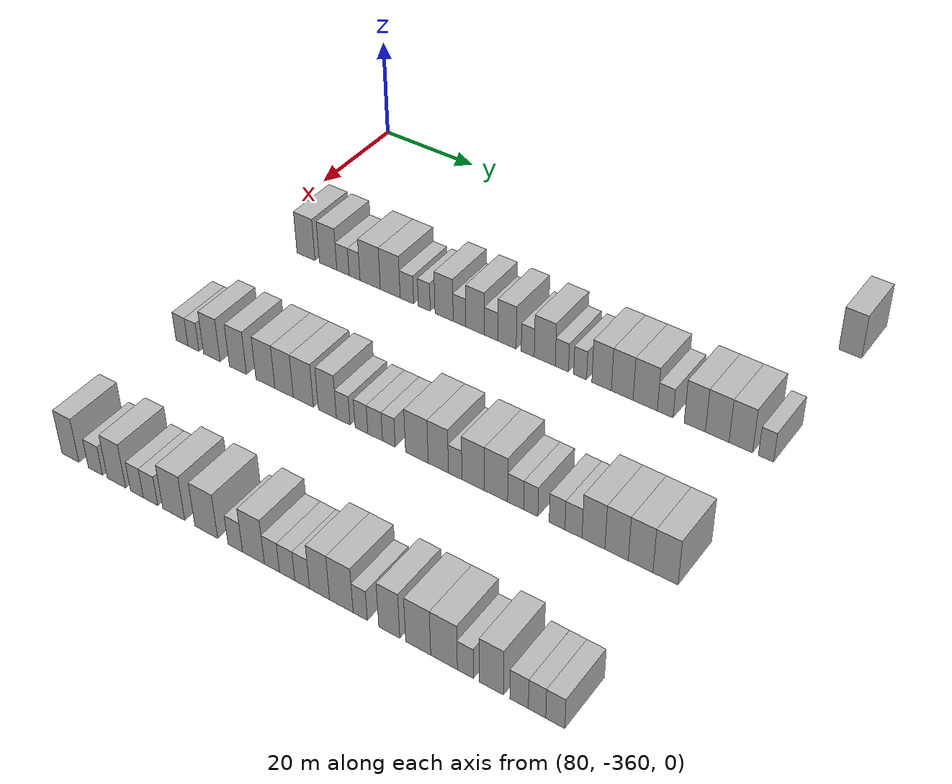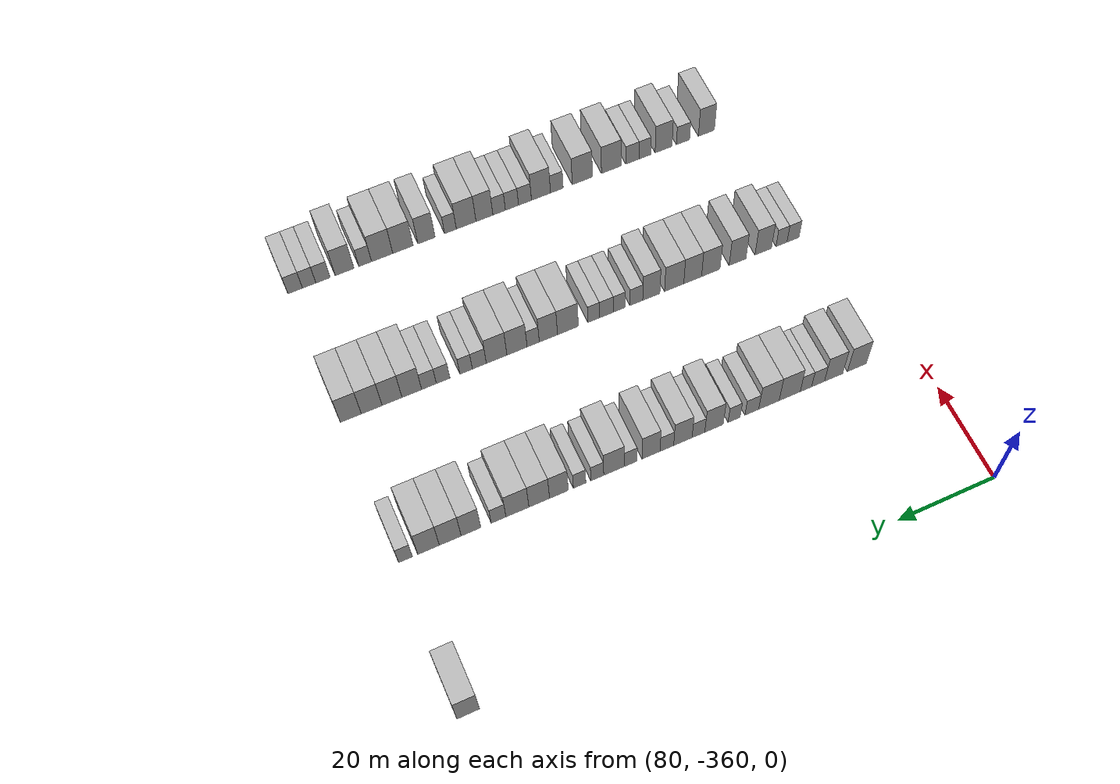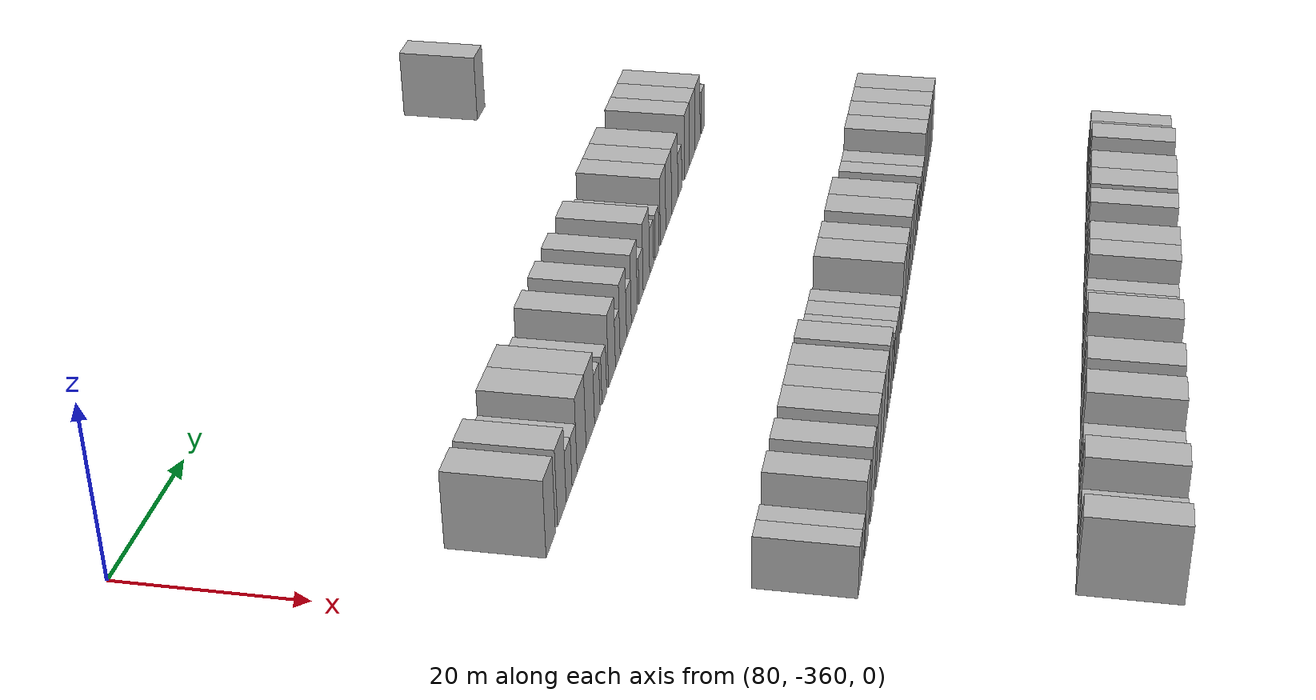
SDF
<sdf version="1.6">
 <world name="default">
  <model name="building_496">
   <static>1</static>
   <pose>85.0000 -257.0324 0 0.000000 0.000000 0.000000</pose>
   <link name="link">
    <pose>0 0 4.50 0 0 0</pose>
    <collision name="collision"><geometry><box><size>10.0000 4.1107 9.0000</size></box></geometry></collision>
    <visual name="visual">
     <cast_shadows>0</cast_shadows>
     <geometry><box><size>10.0000 4.1107 9.0000</size></box></geometry>
     <material>
      <script>
       <uri>model://HANNAS_wall/materials/scripts</uri>
       <uri>model://HANNAS_wall/materials/textures</uri>
       <name>vrc/HANNAS_wall</name>
      </script>
     </material>
    </visual>
   </link>
  </model>
  <model name="building_699">
   <static>1</static>
   <pose>115.0000 -348.1532 0 0.000000 0.000000 0.000000</pose>
   <link name="link">
    <pose>0 0 4.50 0 0 0</pose>
    <collision name="collision"><geometry><box><size>10.0000 4.0705 9.0000</size></box></geometry></collision>
    <visual name="visual">
     <cast_shadows>0</cast_shadows>
     <geometry><box><size>10.0000 4.0705 9.0000</size></box></geometry>
     <material>
      <script>
       <uri>model://HANNAS_wall/materials/scripts</uri>
       <uri>model://HANNAS_wall/materials/textures</uri>
       <name>vrc/HANNAS_wall</name>
      </script>
     </material>
    </visual>
   </link>
  </model>
  <model name="building_700">
   <static>1</static>
   <pose>115.0000 -343.1688 0 0.000000 0.000000 0.000000</pose>
   <link name="link">
    <pose>0 0 4.50 0 0 0</pose>
    <collision name="collision"><geometry><box><size>10.0000 3.8982 9.0000</size></box></geometry></collision>
    <visual name="visual">
     <cast_shadows>0</cast_shadows>
     <geometry><box><size>10.0000 3.8982 9.0000</size></box></geometry>
     <material>
      <script>
       <uri>model://HANNAS_wall/materials/scripts</uri>
       <uri>model://HANNAS_wall/materials/textures</uri>
       <name>vrc/HANNAS_wall</name>
      </script>
     </material>
    </visual>
   </link>
  </model>
  <model name="building_701">
   <static>1</static>
   <pose>115.0000 -339.8557 0 0.000000 0.000000 0.000000</pose>
   <link name="link">
    <pose>0 0 3.00 0 0 0</pose>
    <collision name="collision"><geometry><box><size>10.0000 2.7280 6.0000</size></box></geometry></collision>
    <visual name="visual">
     <cast_shadows>0</cast_shadows>
     <geometry><box><size>10.0000 2.7280 6.0000</size></box></geometry>
     <material>
      <script>
       <uri>model://HANNAS_wall/materials/scripts</uri>
       <uri>model://HANNAS_wall/materials/textures</uri>
       <name>vrc/HANNAS_wall</name>
      </script>
     </material>
    </visual>
   </link>
  </model>
  <model name="building_702">
   <static>1</static>
   <pose>115.0000 -337.2853 0 0.000000 0.000000 0.000000</pose>
   <link name="link">
    <pose>0 0 3.00 0 0 0</pose>
    <collision name="collision"><geometry><box><size>10.0000 2.4129 6.0000</size></box></geometry></collision>
    <visual name="visual">
     <cast_shadows>0</cast_shadows>
     <geometry><box><size>10.0000 2.4129 6.0000</size></box></geometry>
     <material>
      <script>
       <uri>model://HANNAS_wall/materials/scripts</uri>
       <uri>model://HANNAS_wall/materials/textures</uri>
       <name>vrc/HANNAS_wall</name>
      </script>
     </material>
    </visual>
   </link>
  </model>
  <model name="building_703">
   <static>1</static>
   <pose>115.0000 -333.8695 0 0.000000 0.000000 0.000000</pose>
   <link name="link">
    <pose>0 0 4.50 0 0 0</pose>
    <collision name="collision"><geometry><box><size>10.0000 4.4187 9.0000</size></box></geometry></collision>
    <visual name="visual">
     <cast_shadows>0</cast_shadows>
     <geometry><box><size>10.0000 4.4187 9.0000</size></box></geometry>
     <material>
      <script>
       <uri>model://HANNAS_wall/materials/scripts</uri>
       <uri>model://HANNAS_wall/materials/textures</uri>
       <name>vrc/HANNAS_wall</name>
      </script>
     </material>
    </visual>
   </link>
  </model>
  <model name="building_704">
   <static>1</static>
   <pose>115.0000 -329.5209 0 0.000000 0.000000 0.000000</pose>
   <link name="link">
    <pose>0 0 4.50 0 0 0</pose>
    <collision name="collision"><geometry><box><size>10.0000 4.2785 9.0000</size></box></geometry></collision>
    <visual name="visual">
     <cast_shadows>0</cast_shadows>
     <geometry><box><size>10.0000 4.2785 9.0000</size></box></geometry>
     <material>
      <script>
       <uri>model://HANNAS_wall/materials/scripts</uri>
       <uri>model://HANNAS_wall/materials/textures</uri>
       <name>vrc/HANNAS_wall</name>
      </script>
     </material>
    </visual>
   </link>
  </model>
  <model name="building_705">
   <static>1</static>
   <pose>115.0000 -325.9528 0 0.000000 0.000000 0.000000</pose>
   <link name="link">
    <pose>0 0 3.00 0 0 0</pose>
    <collision name="collision"><geometry><box><size>10.0000 2.8577 6.0000</size></box></geometry></collision>
    <visual name="visual">
     <cast_shadows>0</cast_shadows>
     <geometry><box><size>10.0000 2.8577 6.0000</size></box></geometry>
     <material>
      <script>
       <uri>model://HANNAS_wall/materials/scripts</uri>
       <uri>model://HANNAS_wall/materials/textures</uri>
       <name>vrc/HANNAS_wall</name>
      </script>
     </material>
    </visual>
   </link>
  </model>
  <model name="building_706">
   <static>1</static>
   <pose>115.0000 -322.2685 0 0.000000 0.000000 0.000000</pose>
   <link name="link">
    <pose>0 0 3.00 0 0 0</pose>
    <collision name="collision"><geometry><box><size>10.0000 2.5109 6.0000</size></box></geometry></collision>
    <visual name="visual">
     <cast_shadows>0</cast_shadows>
     <geometry><box><size>10.0000 2.5109 6.0000</size></box></geometry>
     <material>
      <script>
       <uri>model://HANNAS_wall/materials/scripts</uri>
       <uri>model://HANNAS_wall/materials/textures</uri>
       <name>vrc/HANNAS_wall</name>
      </script>
     </material>
    </visual>
   </link>
  </model>
  <model name="building_707">
   <static>1</static>
   <pose>115.0000 -318.1176 0 0.000000 0.000000 0.000000</pose>
   <link name="link">
    <pose>0 0 4.50 0 0 0</pose>
    <collision name="collision"><geometry><box><size>10.0000 3.7908 9.0000</size></box></geometry></collision>
    <visual name="visual">
     <cast_shadows>0</cast_shadows>
     <geometry><box><size>10.0000 3.7908 9.0000</size></box></geometry>
     <material>
      <script>
       <uri>model://HANNAS_wall/materials/scripts</uri>
       <uri>model://HANNAS_wall/materials/textures</uri>
       <name>vrc/HANNAS_wall</name>
      </script>
     </material>
    </visual>
   </link>
  </model>
  <model name="building_708">
   <static>1</static>
   <pose>115.0000 -314.9171 0 0.000000 0.000000 0.000000</pose>
   <link name="link">
    <pose>0 0 3.00 0 0 0</pose>
    <collision name="collision"><geometry><box><size>10.0000 2.6103 6.0000</size></box></geometry></collision>
    <visual name="visual">
     <cast_shadows>0</cast_shadows>
     <geometry><box><size>10.0000 2.6103 6.0000</size></box></geometry>
     <material>
      <script>
       <uri>model://HANNAS_wall/materials/scripts</uri>
       <uri>model://HANNAS_wall/materials/textures</uri>
       <name>vrc/HANNAS_wall</name>
      </script>
     </material>
    </visual>
   </link>
  </model>
  <model name="building_709">
   <static>1</static>
   <pose>115.0000 -311.7356 0 0.000000 0.000000 0.000000</pose>
   <link name="link">
    <pose>0 0 4.50 0 0 0</pose>
    <collision name="collision"><geometry><box><size>10.0000 3.7527 9.0000</size></box></geometry></collision>
    <visual name="visual">
     <cast_shadows>0</cast_shadows>
     <geometry><box><size>10.0000 3.7527 9.0000</size></box></geometry>
     <material>
      <script>
       <uri>model://HANNAS_wall/materials/scripts</uri>
       <uri>model://HANNAS_wall/materials/textures</uri>
       <name>vrc/HANNAS_wall</name>
      </script>
     </material>
    </visual>
   </link>
  </model>
  <model name="building_710">
   <static>1</static>
   <pose>115.0000 -308.4709 0 0.000000 0.000000 0.000000</pose>
   <link name="link">
    <pose>0 0 3.00 0 0 0</pose>
    <collision name="collision"><geometry><box><size>10.0000 2.7768 6.0000</size></box></geometry></collision>
    <visual name="visual">
     <cast_shadows>0</cast_shadows>
     <geometry><box><size>10.0000 2.7768 6.0000</size></box></geometry>
     <material>
      <script>
       <uri>model://HANNAS_wall/materials/scripts</uri>
       <uri>model://HANNAS_wall/materials/textures</uri>
       <name>vrc/HANNAS_wall</name>
      </script>
     </material>
    </visual>
   </link>
  </model>
  <model name="building_711">
   <static>1</static>
   <pose>115.0000 -305.2650 0 0.000000 0.000000 0.000000</pose>
   <link name="link">
    <pose>0 0 4.50 0 0 0</pose>
    <collision name="collision"><geometry><box><size>10.0000 3.6349 9.0000</size></box></geometry></collision>
    <visual name="visual">
     <cast_shadows>0</cast_shadows>
     <geometry><box><size>10.0000 3.6349 9.0000</size></box></geometry>
     <material>
      <script>
       <uri>model://HANNAS_wall/materials/scripts</uri>
       <uri>model://HANNAS_wall/materials/textures</uri>
       <name>vrc/HANNAS_wall</name>
      </script>
     </material>
    </visual>
   </link>
  </model>
  <model name="building_712">
   <static>1</static>
   <pose>115.0000 -301.1611 0 0.000000 0.000000 0.000000</pose>
   <link name="link">
    <pose>0 0 3.00 0 0 0</pose>
    <collision name="collision"><geometry><box><size>10.0000 2.5730 6.0000</size></box></geometry></collision>
    <visual name="visual">
     <cast_shadows>0</cast_shadows>
     <geometry><box><size>10.0000 2.5730 6.0000</size></box></geometry>
     <material>
      <script>
       <uri>model://HANNAS_wall/materials/scripts</uri>
       <uri>model://HANNAS_wall/materials/textures</uri>
       <name>vrc/HANNAS_wall</name>
      </script>
     </material>
    </visual>
   </link>
  </model>
  <model name="building_713">
   <static>1</static>
   <pose>115.0000 -297.8259 0 0.000000 0.000000 0.000000</pose>
   <link name="link">
    <pose>0 0 4.50 0 0 0</pose>
    <collision name="collision"><geometry><box><size>10.0000 4.0975 9.0000</size></box></geometry></collision>
    <visual name="visual">
     <cast_shadows>0</cast_shadows>
     <geometry><box><size>10.0000 4.0975 9.0000</size></box></geometry>
     <material>
      <script>
       <uri>model://HANNAS_wall/materials/scripts</uri>
       <uri>model://HANNAS_wall/materials/textures</uri>
       <name>vrc/HANNAS_wall</name>
      </script>
     </material>
    </visual>
   </link>
  </model>
  <model name="building_714">
   <static>1</static>
   <pose>115.0000 -294.4943 0 0.000000 0.000000 0.000000</pose>
   <link name="link">
    <pose>0 0 3.00 0 0 0</pose>
    <collision name="collision"><geometry><box><size>10.0000 2.5657 6.0000</size></box></geometry></collision>
    <visual name="visual">
     <cast_shadows>0</cast_shadows>
     <geometry><box><size>10.0000 2.5657 6.0000</size></box></geometry>
     <material>
      <script>
       <uri>model://HANNAS_wall/materials/scripts</uri>
       <uri>model://HANNAS_wall/materials/textures</uri>
       <name>vrc/HANNAS_wall</name>
      </script>
     </material>
    </visual>
   </link>
  </model>
  <model name="building_715">
   <static>1</static>
   <pose>115.0000 -290.9770 0 0.000000 0.000000 0.000000</pose>
   <link name="link">
    <pose>0 0 3.00 0 0 0</pose>
    <collision name="collision"><geometry><box><size>10.0000 2.4687 6.0000</size></box></geometry></collision>
    <visual name="visual">
     <cast_shadows>0</cast_shadows>
     <geometry><box><size>10.0000 2.4687 6.0000</size></box></geometry>
     <material>
      <script>
       <uri>model://HANNAS_wall/materials/scripts</uri>
       <uri>model://HANNAS_wall/materials/textures</uri>
       <name>vrc/HANNAS_wall</name>
      </script>
     </material>
    </visual>
   </link>
  </model>
  <model name="building_716">
   <static>1</static>
   <pose>115.0000 -286.8966 0 0.000000 0.000000 0.000000</pose>
   <link name="link">
    <pose>0 0 4.50 0 0 0</pose>
    <collision name="collision"><geometry><box><size>10.0000 3.6921 9.0000</size></box></geometry></collision>
    <visual name="visual">
     <cast_shadows>0</cast_shadows>
     <geometry><box><size>10.0000 3.6921 9.0000</size></box></geometry>
     <material>
      <script>
       <uri>model://HANNAS_wall/materials/scripts</uri>
       <uri>model://HANNAS_wall/materials/textures</uri>
       <name>vrc/HANNAS_wall</name>
      </script>
     </material>
    </visual>
   </link>
  </model>
  <model name="building_717">
   <static>1</static>
   <pose>115.0000 -283.0255 0 0.000000 0.000000 0.000000</pose>
   <link name="link">
    <pose>0 0 4.50 0 0 0</pose>
    <collision name="collision"><geometry><box><size>10.0000 4.0502 9.0000</size></box></geometry></collision>
    <visual name="visual">
     <cast_shadows>0</cast_shadows>
     <geometry><box><size>10.0000 4.0502 9.0000</size></box></geometry>
     <material>
      <script>
       <uri>model://HANNAS_wall/materials/scripts</uri>
       <uri>model://HANNAS_wall/materials/textures</uri>
       <name>vrc/HANNAS_wall</name>
      </script>
     </material>
    </visual>
   </link>
  </model>
  <model name="building_718">
   <static>1</static>
   <pose>115.0000 -278.7639 0 0.000000 0.000000 0.000000</pose>
   <link name="link">
    <pose>0 0 4.50 0 0 0</pose>
    <collision name="collision"><geometry><box><size>10.0000 4.4729 9.0000</size></box></geometry></collision>
    <visual name="visual">
     <cast_shadows>0</cast_shadows>
     <geometry><box><size>10.0000 4.4729 9.0000</size></box></geometry>
     <material>
      <script>
       <uri>model://HANNAS_wall/materials/scripts</uri>
       <uri>model://HANNAS_wall/materials/textures</uri>
       <name>vrc/HANNAS_wall</name>
      </script>
     </material>
    </visual>
   </link>
  </model>
  <model name="building_719">
   <static>1</static>
   <pose>115.0000 -275.0985 0 0.000000 0.000000 0.000000</pose>
   <link name="link">
    <pose>0 0 3.00 0 0 0</pose>
    <collision name="collision"><geometry><box><size>10.0000 2.8578 6.0000</size></box></geometry></collision>
    <visual name="visual">
     <cast_shadows>0</cast_shadows>
     <geometry><box><size>10.0000 2.8578 6.0000</size></box></geometry>
     <material>
      <script>
       <uri>model://HANNAS_wall/materials/scripts</uri>
       <uri>model://HANNAS_wall/materials/textures</uri>
       <name>vrc/HANNAS_wall</name>
      </script>
     </material>
    </visual>
   </link>
  </model>
  <model name="building_720">
   <static>1</static>
   <pose>115.0000 -269.7744 0 0.000000 0.000000 0.000000</pose>
   <link name="link">
    <pose>0 0 4.50 0 0 0</pose>
    <collision name="collision"><geometry><box><size>10.0000 3.7905 9.0000</size></box></geometry></collision>
    <visual name="visual">
     <cast_shadows>0</cast_shadows>
     <geometry><box><size>10.0000 3.7905 9.0000</size></box></geometry>
     <material>
      <script>
       <uri>model://HANNAS_wall/materials/scripts</uri>
       <uri>model://HANNAS_wall/materials/textures</uri>
       <name>vrc/HANNAS_wall</name>
      </script>
     </material>
    </visual>
   </link>
  </model>
  <model name="building_721">
   <static>1</static>
   <pose>115.0000 -265.7896 0 0.000000 0.000000 0.000000</pose>
   <link name="link">
    <pose>0 0 4.50 0 0 0</pose>
    <collision name="collision"><geometry><box><size>10.0000 4.1790 9.0000</size></box></geometry></collision>
    <visual name="visual">
     <cast_shadows>0</cast_shadows>
     <geometry><box><size>10.0000 4.1790 9.0000</size></box></geometry>
     <material>
      <script>
       <uri>model://HANNAS_wall/materials/scripts</uri>
       <uri>model://HANNAS_wall/materials/textures</uri>
       <name>vrc/HANNAS_wall</name>
      </script>
     </material>
    </visual>
   </link>
  </model>
  <model name="building_722">
   <static>1</static>
   <pose>115.0000 -261.6456 0 0.000000 0.000000 0.000000</pose>
   <link name="link">
    <pose>0 0 4.50 0 0 0</pose>
    <collision name="collision"><geometry><box><size>10.0000 4.1090 9.0000</size></box></geometry></collision>
    <visual name="visual">
     <cast_shadows>0</cast_shadows>
     <geometry><box><size>10.0000 4.1090 9.0000</size></box></geometry>
     <material>
      <script>
       <uri>model://HANNAS_wall/materials/scripts</uri>
       <uri>model://HANNAS_wall/materials/textures</uri>
       <name>vrc/HANNAS_wall</name>
      </script>
     </material>
    </visual>
   </link>
  </model>
  <model name="building_723">
   <static>1</static>
   <pose>115.0000 -257.2835 0 0.000000 0.000000 0.000000</pose>
   <link name="link">
    <pose>0 0 3.00 0 0 0</pose>
    <collision name="collision"><geometry><box><size>10.0000 2.6151 6.0000</size></box></geometry></collision>
    <visual name="visual">
     <cast_shadows>0</cast_shadows>
     <geometry><box><size>10.0000 2.6151 6.0000</size></box></geometry>
     <material>
      <script>
       <uri>model://HANNAS_wall/materials/scripts</uri>
       <uri>model://HANNAS_wall/materials/textures</uri>
       <name>vrc/HANNAS_wall</name>
      </script>
     </material>
    </visual>
   </link>
  </model>
  <model name="building_929">
   <static>1</static>
   <pose>145.0000 -350.3426 0 0.000000 0.000000 0.000000</pose>
   <link name="link">
    <pose>0 0 3.00 0 0 0</pose>
    <collision name="collision"><geometry><box><size>10.0000 2.6551 6.0000</size></box></geometry></collision>
    <visual name="visual">
     <cast_shadows>0</cast_shadows>
     <geometry><box><size>10.0000 2.6551 6.0000</size></box></geometry>
     <material>
      <script>
       <uri>model://HANNAS_wall/materials/scripts</uri>
       <uri>model://HANNAS_wall/materials/textures</uri>
       <name>vrc/HANNAS_wall</name>
      </script>
     </material>
    </visual>
   </link>
  </model>
  <model name="building_930">
   <static>1</static>
   <pose>145.0000 -347.7950 0 0.000000 0.000000 0.000000</pose>
   <link name="link">
    <pose>0 0 3.00 0 0 0</pose>
    <collision name="collision"><geometry><box><size>10.0000 2.4402 6.0000</size></box></geometry></collision>
    <visual name="visual">
     <cast_shadows>0</cast_shadows>
     <geometry><box><size>10.0000 2.4402 6.0000</size></box></geometry>
     <material>
      <script>
       <uri>model://HANNAS_wall/materials/scripts</uri>
       <uri>model://HANNAS_wall/materials/textures</uri>
       <name>vrc/HANNAS_wall</name>
      </script>
     </material>
    </visual>
   </link>
  </model>
  <model name="building_931">
   <static>1</static>
   <pose>145.0000 -343.7658 0 0.000000 0.000000 0.000000</pose>
   <link name="link">
    <pose>0 0 4.50 0 0 0</pose>
    <collision name="collision"><geometry><box><size>10.0000 3.6182 9.0000</size></box></geometry></collision>
    <visual name="visual">
     <cast_shadows>0</cast_shadows>
     <geometry><box><size>10.0000 3.6182 9.0000</size></box></geometry>
     <material>
      <script>
       <uri>model://HANNAS_wall/materials/scripts</uri>
       <uri>model://HANNAS_wall/materials/textures</uri>
       <name>vrc/HANNAS_wall</name>
      </script>
     </material>
    </visual>
   </link>
  </model>
  <model name="building_932">
   <static>1</static>
   <pose>145.0000 -338.1232 0 0.000000 0.000000 0.000000</pose>
   <link name="link">
    <pose>0 0 4.50 0 0 0</pose>
    <collision name="collision"><geometry><box><size>10.0000 3.6670 9.0000</size></box></geometry></collision>
    <visual name="visual">
     <cast_shadows>0</cast_shadows>
     <geometry><box><size>10.0000 3.6670 9.0000</size></box></geometry>
     <material>
      <script>
       <uri>model://HANNAS_wall/materials/scripts</uri>
       <uri>model://HANNAS_wall/materials/textures</uri>
       <name>vrc/HANNAS_wall</name>
      </script>
     </material>
    </visual>
   </link>
  </model>
  <model name="building_933">
   <static>1</static>
   <pose>145.0000 -332.2966 0 0.000000 0.000000 0.000000</pose>
   <link name="link">
    <pose>0 0 4.50 0 0 0</pose>
    <collision name="collision"><geometry><box><size>10.0000 3.9861 9.0000</size></box></geometry></collision>
    <visual name="visual">
     <cast_shadows>0</cast_shadows>
     <geometry><box><size>10.0000 3.9861 9.0000</size></box></geometry>
     <material>
      <script>
       <uri>model://HANNAS_wall/materials/scripts</uri>
       <uri>model://HANNAS_wall/materials/textures</uri>
       <name>vrc/HANNAS_wall</name>
      </script>
     </material>
    </visual>
   </link>
  </model>
  <model name="building_934">
   <static>1</static>
   <pose>145.0000 -328.3857 0 0.000000 0.000000 0.000000</pose>
   <link name="link">
    <pose>0 0 4.50 0 0 0</pose>
    <collision name="collision"><geometry><box><size>10.0000 3.8357 9.0000</size></box></geometry></collision>
    <visual name="visual">
     <cast_shadows>0</cast_shadows>
     <geometry><box><size>10.0000 3.8357 9.0000</size></box></geometry>
     <material>
      <script>
       <uri>model://HANNAS_wall/materials/scripts</uri>
       <uri>model://HANNAS_wall/materials/textures</uri>
       <name>vrc/HANNAS_wall</name>
      </script>
     </material>
    </visual>
   </link>
  </model>
  <model name="building_935">
   <static>1</static>
   <pose>145.0000 -324.4025 0 0.000000 0.000000 0.000000</pose>
   <link name="link">
    <pose>0 0 4.50 0 0 0</pose>
    <collision name="collision"><geometry><box><size>10.0000 4.1306 9.0000</size></box></geometry></collision>
    <visual name="visual">
     <cast_shadows>0</cast_shadows>
     <geometry><box><size>10.0000 4.1306 9.0000</size></box></geometry>
     <material>
      <script>
       <uri>model://HANNAS_wall/materials/scripts</uri>
       <uri>model://HANNAS_wall/materials/textures</uri>
       <name>vrc/HANNAS_wall</name>
      </script>
     </material>
    </visual>
   </link>
  </model>
  <model name="building_936">
   <static>1</static>
   <pose>145.0000 -319.5106 0 0.000000 0.000000 0.000000</pose>
   <link name="link">
    <pose>0 0 4.50 0 0 0</pose>
    <collision name="collision"><geometry><box><size>10.0000 3.6531 9.0000</size></box></geometry></collision>
    <visual name="visual">
     <cast_shadows>0</cast_shadows>
     <geometry><box><size>10.0000 3.6531 9.0000</size></box></geometry>
     <material>
      <script>
       <uri>model://HANNAS_wall/materials/scripts</uri>
       <uri>model://HANNAS_wall/materials/textures</uri>
       <name>vrc/HANNAS_wall</name>
      </script>
     </material>
    </visual>
   </link>
  </model>
  <model name="building_937">
   <static>1</static>
   <pose>145.0000 -316.3221 0 0.000000 0.000000 0.000000</pose>
   <link name="link">
    <pose>0 0 3.00 0 0 0</pose>
    <collision name="collision"><geometry><box><size>10.0000 2.7239 6.0000</size></box></geometry></collision>
    <visual name="visual">
     <cast_shadows>0</cast_shadows>
     <geometry><box><size>10.0000 2.7239 6.0000</size></box></geometry>
     <material>
      <script>
       <uri>model://HANNAS_wall/materials/scripts</uri>
       <uri>model://HANNAS_wall/materials/textures</uri>
       <name>vrc/HANNAS_wall</name>
      </script>
     </material>
    </visual>
   </link>
  </model>
  <model name="building_938">
   <static>1</static>
   <pose>145.0000 -312.7065 0 0.000000 0.000000 0.000000</pose>
   <link name="link">
    <pose>0 0 3.00 0 0 0</pose>
    <collision name="collision"><geometry><box><size>10.0000 2.5075 6.0000</size></box></geometry></collision>
    <visual name="visual">
     <cast_shadows>0</cast_shadows>
     <geometry><box><size>10.0000 2.5075 6.0000</size></box></geometry>
     <material>
      <script>
       <uri>model://HANNAS_wall/materials/scripts</uri>
       <uri>model://HANNAS_wall/materials/textures</uri>
       <name>vrc/HANNAS_wall</name>
      </script>
     </material>
    </visual>
   </link>
  </model>
  <model name="building_939">
   <static>1</static>
   <pose>145.0000 -310.0122 0 0.000000 0.000000 0.000000</pose>
   <link name="link">
    <pose>0 0 3.00 0 0 0</pose>
    <collision name="collision"><geometry><box><size>10.0000 2.8811 6.0000</size></box></geometry></collision>
    <visual name="visual">
     <cast_shadows>0</cast_shadows>
     <geometry><box><size>10.0000 2.8811 6.0000</size></box></geometry>
     <material>
      <script>
       <uri>model://HANNAS_wall/materials/scripts</uri>
       <uri>model://HANNAS_wall/materials/textures</uri>
       <name>vrc/HANNAS_wall</name>
      </script>
     </material>
    </visual>
   </link>
  </model>
  <model name="building_940">
   <static>1</static>
   <pose>145.0000 -307.3392 0 0.000000 0.000000 0.000000</pose>
   <link name="link">
    <pose>0 0 3.00 0 0 0</pose>
    <collision name="collision"><geometry><box><size>10.0000 2.4649 6.0000</size></box></geometry></collision>
    <visual name="visual">
     <cast_shadows>0</cast_shadows>
     <geometry><box><size>10.0000 2.4649 6.0000</size></box></geometry>
     <material>
      <script>
       <uri>model://HANNAS_wall/materials/scripts</uri>
       <uri>model://HANNAS_wall/materials/textures</uri>
       <name>vrc/HANNAS_wall</name>
      </script>
     </material>
    </visual>
   </link>
  </model>
  <model name="building_941">
   <static>1</static>
   <pose>145.0000 -301.9394 0 0.000000 0.000000 0.000000</pose>
   <link name="link">
    <pose>0 0 4.50 0 0 0</pose>
    <collision name="collision"><geometry><box><size>10.0000 4.3347 9.0000</size></box></geometry></collision>
    <visual name="visual">
     <cast_shadows>0</cast_shadows>
     <geometry><box><size>10.0000 4.3347 9.0000</size></box></geometry>
     <material>
      <script>
       <uri>model://HANNAS_wall/materials/scripts</uri>
       <uri>model://HANNAS_wall/materials/textures</uri>
       <name>vrc/HANNAS_wall</name>
      </script>
     </material>
    </visual>
   </link>
  </model>
  <model name="building_942">
   <static>1</static>
   <pose>145.0000 -297.8811 0 0.000000 0.000000 0.000000</pose>
   <link name="link">
    <pose>0 0 4.50 0 0 0</pose>
    <collision name="collision"><geometry><box><size>10.0000 3.7818 9.0000</size></box></geometry></collision>
    <visual name="visual">
     <cast_shadows>0</cast_shadows>
     <geometry><box><size>10.0000 3.7818 9.0000</size></box></geometry>
     <material>
      <script>
       <uri>model://HANNAS_wall/materials/scripts</uri>
       <uri>model://HANNAS_wall/materials/textures</uri>
       <name>vrc/HANNAS_wall</name>
      </script>
     </material>
    </visual>
   </link>
  </model>
  <model name="building_943">
   <static>1</static>
   <pose>145.0000 -294.7288 0 0.000000 0.000000 0.000000</pose>
   <link name="link">
    <pose>0 0 3.00 0 0 0</pose>
    <collision name="collision"><geometry><box><size>10.0000 2.5229 6.0000</size></box></geometry></collision>
    <visual name="visual">
     <cast_shadows>0</cast_shadows>
     <geometry><box><size>10.0000 2.5229 6.0000</size></box></geometry>
     <material>
      <script>
       <uri>model://HANNAS_wall/materials/scripts</uri>
       <uri>model://HANNAS_wall/materials/textures</uri>
       <name>vrc/HANNAS_wall</name>
      </script>
     </material>
    </visual>
   </link>
  </model>
  <model name="building_944">
   <static>1</static>
   <pose>145.0000 -291.3966 0 0.000000 0.000000 0.000000</pose>
   <link name="link">
    <pose>0 0 4.50 0 0 0</pose>
    <collision name="collision"><geometry><box><size>10.0000 4.1415 9.0000</size></box></geometry></collision>
    <visual name="visual">
     <cast_shadows>0</cast_shadows>
     <geometry><box><size>10.0000 4.1415 9.0000</size></box></geometry>
     <material>
      <script>
       <uri>model://HANNAS_wall/materials/scripts</uri>
       <uri>model://HANNAS_wall/materials/textures</uri>
       <name>vrc/HANNAS_wall</name>
      </script>
     </material>
    </visual>
   </link>
  </model>
  <model name="building_945">
   <static>1</static>
   <pose>145.0000 -287.2267 0 0.000000 0.000000 0.000000</pose>
   <link name="link">
    <pose>0 0 4.50 0 0 0</pose>
    <collision name="collision"><geometry><box><size>10.0000 4.1982 9.0000</size></box></geometry></collision>
    <visual name="visual">
     <cast_shadows>0</cast_shadows>
     <geometry><box><size>10.0000 4.1982 9.0000</size></box></geometry>
     <material>
      <script>
       <uri>model://HANNAS_wall/materials/scripts</uri>
       <uri>model://HANNAS_wall/materials/textures</uri>
       <name>vrc/HANNAS_wall</name>
      </script>
     </material>
    </visual>
   </link>
  </model>
  <model name="building_946">
   <static>1</static>
   <pose>145.0000 -283.7006 0 0.000000 0.000000 0.000000</pose>
   <link name="link">
    <pose>0 0 3.00 0 0 0</pose>
    <collision name="collision"><geometry><box><size>10.0000 2.8538 6.0000</size></box></geometry></collision>
    <visual name="visual">
     <cast_shadows>0</cast_shadows>
     <geometry><box><size>10.0000 2.8538 6.0000</size></box></geometry>
     <material>
      <script>
       <uri>model://HANNAS_wall/materials/scripts</uri>
       <uri>model://HANNAS_wall/materials/textures</uri>
       <name>vrc/HANNAS_wall</name>
      </script>
     </material>
    </visual>
   </link>
  </model>
  <model name="building_947">
   <static>1</static>
   <pose>145.0000 -281.0030 0 0.000000 0.000000 0.000000</pose>
   <link name="link">
    <pose>0 0 3.00 0 0 0</pose>
    <collision name="collision"><geometry><box><size>10.0000 2.5414 6.0000</size></box></geometry></collision>
    <visual name="visual">
     <cast_shadows>0</cast_shadows>
     <geometry><box><size>10.0000 2.5414 6.0000</size></box></geometry>
     <material>
      <script>
       <uri>model://HANNAS_wall/materials/scripts</uri>
       <uri>model://HANNAS_wall/materials/textures</uri>
       <name>vrc/HANNAS_wall</name>
      </script>
     </material>
    </visual>
   </link>
  </model>
  <model name="building_948">
   <static>1</static>
   <pose>145.0000 -276.3577 0 0.000000 0.000000 0.000000</pose>
   <link name="link">
    <pose>0 0 3.00 0 0 0</pose>
    <collision name="collision"><geometry><box><size>10.0000 2.7494 6.0000</size></box></geometry></collision>
    <visual name="visual">
     <cast_shadows>0</cast_shadows>
     <geometry><box><size>10.0000 2.7494 6.0000</size></box></geometry>
     <material>
      <script>
       <uri>model://HANNAS_wall/materials/scripts</uri>
       <uri>model://HANNAS_wall/materials/textures</uri>
       <name>vrc/HANNAS_wall</name>
      </script>
     </material>
    </visual>
   </link>
  </model>
  <model name="building_949">
   <static>1</static>
   <pose>145.0000 -273.5120 0 0.000000 0.000000 0.000000</pose>
   <link name="link">
    <pose>0 0 3.00 0 0 0</pose>
    <collision name="collision"><geometry><box><size>10.0000 2.9420 6.0000</size></box></geometry></collision>
    <visual name="visual">
     <cast_shadows>0</cast_shadows>
     <geometry><box><size>10.0000 2.9420 6.0000</size></box></geometry>
     <material>
      <script>
       <uri>model://HANNAS_wall/materials/scripts</uri>
       <uri>model://HANNAS_wall/materials/textures</uri>
       <name>vrc/HANNAS_wall</name>
      </script>
     </material>
    </visual>
   </link>
  </model>
  <model name="building_950">
   <static>1</static>
   <pose>145.0000 -270.0796 0 0.000000 0.000000 0.000000</pose>
   <link name="link">
    <pose>0 0 4.50 0 0 0</pose>
    <collision name="collision"><geometry><box><size>10.0000 3.9226 9.0000</size></box></geometry></collision>
    <visual name="visual">
     <cast_shadows>0</cast_shadows>
     <geometry><box><size>10.0000 3.9226 9.0000</size></box></geometry>
     <material>
      <script>
       <uri>model://HANNAS_wall/materials/scripts</uri>
       <uri>model://HANNAS_wall/materials/textures</uri>
       <name>vrc/HANNAS_wall</name>
      </script>
     </material>
    </visual>
   </link>
  </model>
  <model name="building_951">
   <static>1</static>
   <pose>145.0000 -266.1434 0 0.000000 0.000000 0.000000</pose>
   <link name="link">
    <pose>0 0 4.50 0 0 0</pose>
    <collision name="collision"><geometry><box><size>10.0000 3.9499 9.0000</size></box></geometry></collision>
    <visual name="visual">
     <cast_shadows>0</cast_shadows>
     <geometry><box><size>10.0000 3.9499 9.0000</size></box></geometry>
     <material>
      <script>
       <uri>model://HANNAS_wall/materials/scripts</uri>
       <uri>model://HANNAS_wall/materials/textures</uri>
       <name>vrc/HANNAS_wall</name>
      </script>
     </material>
    </visual>
   </link>
  </model>
  <model name="building_952">
   <static>1</static>
   <pose>145.0000 -262.1147 0 0.000000 0.000000 0.000000</pose>
   <link name="link">
    <pose>0 0 4.50 0 0 0</pose>
    <collision name="collision"><geometry><box><size>10.0000 4.1076 9.0000</size></box></geometry></collision>
    <visual name="visual">
     <cast_shadows>0</cast_shadows>
     <geometry><box><size>10.0000 4.1076 9.0000</size></box></geometry>
     <material>
      <script>
       <uri>model://HANNAS_wall/materials/scripts</uri>
       <uri>model://HANNAS_wall/materials/textures</uri>
       <name>vrc/HANNAS_wall</name>
      </script>
     </material>
    </visual>
   </link>
  </model>
  <model name="building_953">
   <static>1</static>
   <pose>145.0000 -257.9991 0 0.000000 0.000000 0.000000</pose>
   <link name="link">
    <pose>0 0 4.50 0 0 0</pose>
    <collision name="collision"><geometry><box><size>10.0000 4.1236 9.0000</size></box></geometry></collision>
    <visual name="visual">
     <cast_shadows>0</cast_shadows>
     <geometry><box><size>10.0000 4.1236 9.0000</size></box></geometry>
     <material>
      <script>
       <uri>model://HANNAS_wall/materials/scripts</uri>
       <uri>model://HANNAS_wall/materials/textures</uri>
       <name>vrc/HANNAS_wall</name>
      </script>
     </material>
    </visual>
   </link>
  </model>
  <model name="building_1136">
   <static>1</static>
   <pose>175.0000 -346.1457 0 0.000000 0.000000 0.000000</pose>
   <link name="link">
    <pose>0 0 4.50 0 0 0</pose>
    <collision name="collision"><geometry><box><size>10.0000 3.6366 9.0000</size></box></geometry></collision>
    <visual name="visual">
     <cast_shadows>0</cast_shadows>
     <geometry><box><size>10.0000 3.6366 9.0000</size></box></geometry>
     <material>
      <script>
       <uri>model://HANNAS_wall/materials/scripts</uri>
       <uri>model://HANNAS_wall/materials/textures</uri>
       <name>vrc/HANNAS_wall</name>
      </script>
     </material>
    </visual>
   </link>
  </model>
  <model name="building_1137">
   <static>1</static>
   <pose>175.0000 -340.8342 0 0.000000 0.000000 0.000000</pose>
   <link name="link">
    <pose>0 0 3.00 0 0 0</pose>
    <collision name="collision"><geometry><box><size>10.0000 2.9864 6.0000</size></box></geometry></collision>
    <visual name="visual">
     <cast_shadows>0</cast_shadows>
     <geometry><box><size>10.0000 2.9864 6.0000</size></box></geometry>
     <material>
      <script>
       <uri>model://HANNAS_wall/materials/scripts</uri>
       <uri>model://HANNAS_wall/materials/textures</uri>
       <name>vrc/HANNAS_wall</name>
      </script>
     </material>
    </visual>
   </link>
  </model>
  <model name="building_1138">
   <static>1</static>
   <pose>175.0000 -336.4404 0 0.000000 0.000000 0.000000</pose>
   <link name="link">
    <pose>0 0 4.50 0 0 0</pose>
    <collision name="collision"><geometry><box><size>10.0000 3.8012 9.0000</size></box></geometry></collision>
    <visual name="visual">
     <cast_shadows>0</cast_shadows>
     <geometry><box><size>10.0000 3.8012 9.0000</size></box></geometry>
     <material>
      <script>
       <uri>model://HANNAS_wall/materials/scripts</uri>
       <uri>model://HANNAS_wall/materials/textures</uri>
       <name>vrc/HANNAS_wall</name>
      </script>
     </material>
    </visual>
   </link>
  </model>
  <model name="building_1139">
   <static>1</static>
   <pose>175.0000 -332.2297 0 0.000000 0.000000 0.000000</pose>
   <link name="link">
    <pose>0 0 3.00 0 0 0</pose>
    <collision name="collision"><geometry><box><size>10.0000 2.6202 6.0000</size></box></geometry></collision>
    <visual name="visual">
     <cast_shadows>0</cast_shadows>
     <geometry><box><size>10.0000 2.6202 6.0000</size></box></geometry>
     <material>
      <script>
       <uri>model://HANNAS_wall/materials/scripts</uri>
       <uri>model://HANNAS_wall/materials/textures</uri>
       <name>vrc/HANNAS_wall</name>
      </script>
     </material>
    </visual>
   </link>
  </model>
  <model name="building_1140">
   <static>1</static>
   <pose>175.0000 -329.4484 0 0.000000 0.000000 0.000000</pose>
   <link name="link">
    <pose>0 0 3.00 0 0 0</pose>
    <collision name="collision"><geometry><box><size>10.0000 2.9423 6.0000</size></box></geometry></collision>
    <visual name="visual">
     <cast_shadows>0</cast_shadows>
     <geometry><box><size>10.0000 2.9423 6.0000</size></box></geometry>
     <material>
      <script>
       <uri>model://HANNAS_wall/materials/scripts</uri>
       <uri>model://HANNAS_wall/materials/textures</uri>
       <name>vrc/HANNAS_wall</name>
      </script>
     </material>
    </visual>
   </link>
  </model>
  <model name="building_1141">
   <static>1</static>
   <pose>175.0000 -324.7817 0 0.000000 0.000000 0.000000</pose>
   <link name="link">
    <pose>0 0 4.50 0 0 0</pose>
    <collision name="collision"><geometry><box><size>10.0000 4.3912 9.0000</size></box></geometry></collision>
    <visual name="visual">
     <cast_shadows>0</cast_shadows>
     <geometry><box><size>10.0000 4.3912 9.0000</size></box></geometry>
     <material>
      <script>
       <uri>model://HANNAS_wall/materials/scripts</uri>
       <uri>model://HANNAS_wall/materials/textures</uri>
       <name>vrc/HANNAS_wall</name>
      </script>
     </material>
    </visual>
   </link>
  </model>
  <model name="building_1142">
   <static>1</static>
   <pose>175.0000 -318.3699 0 0.000000 0.000000 0.000000</pose>
   <link name="link">
    <pose>0 0 4.50 0 0 0</pose>
    <collision name="collision"><geometry><box><size>10.0000 4.4323 9.0000</size></box></geometry></collision>
    <visual name="visual">
     <cast_shadows>0</cast_shadows>
     <geometry><box><size>10.0000 4.4323 9.0000</size></box></geometry>
     <material>
      <script>
       <uri>model://HANNAS_wall/materials/scripts</uri>
       <uri>model://HANNAS_wall/materials/textures</uri>
       <name>vrc/HANNAS_wall</name>
      </script>
     </material>
    </visual>
   </link>
  </model>
  <model name="building_1143">
   <static>1</static>
   <pose>175.0000 -312.7688 0 0.000000 0.000000 0.000000</pose>
   <link name="link">
    <pose>0 0 3.00 0 0 0</pose>
    <collision name="collision"><geometry><box><size>10.0000 2.7699 6.0000</size></box></geometry></collision>
    <visual name="visual">
     <cast_shadows>0</cast_shadows>
     <geometry><box><size>10.0000 2.7699 6.0000</size></box></geometry>
     <material>
      <script>
       <uri>model://HANNAS_wall/materials/scripts</uri>
       <uri>model://HANNAS_wall/materials/textures</uri>
       <name>vrc/HANNAS_wall</name>
      </script>
     </material>
    </visual>
   </link>
  </model>
  <model name="building_1144">
   <static>1</static>
   <pose>175.0000 -309.3181 0 0.000000 0.000000 0.000000</pose>
   <link name="link">
    <pose>0 0 4.50 0 0 0</pose>
    <collision name="collision"><geometry><box><size>10.0000 4.1314 9.0000</size></box></geometry></collision>
    <visual name="visual">
     <cast_shadows>0</cast_shadows>
     <geometry><box><size>10.0000 4.1314 9.0000</size></box></geometry>
     <material>
      <script>
       <uri>model://HANNAS_wall/materials/scripts</uri>
       <uri>model://HANNAS_wall/materials/textures</uri>
       <name>vrc/HANNAS_wall</name>
      </script>
     </material>
    </visual>
   </link>
  </model>
  <model name="building_1145">
   <static>1</static>
   <pose>175.0000 -305.8467 0 0.000000 0.000000 0.000000</pose>
   <link name="link">
    <pose>0 0 3.00 0 0 0</pose>
    <collision name="collision"><geometry><box><size>10.0000 2.8113 6.0000</size></box></geometry></collision>
    <visual name="visual">
     <cast_shadows>0</cast_shadows>
     <geometry><box><size>10.0000 2.8113 6.0000</size></box></geometry>
     <material>
      <script>
       <uri>model://HANNAS_wall/materials/scripts</uri>
       <uri>model://HANNAS_wall/materials/textures</uri>
       <name>vrc/HANNAS_wall</name>
      </script>
     </material>
    </visual>
   </link>
  </model>
  <model name="building_1146">
   <static>1</static>
   <pose>175.0000 -303.0226 0 0.000000 0.000000 0.000000</pose>
   <link name="link">
    <pose>0 0 3.00 0 0 0</pose>
    <collision name="collision"><geometry><box><size>10.0000 2.8370 6.0000</size></box></geometry></collision>
    <visual name="visual">
     <cast_shadows>0</cast_shadows>
     <geometry><box><size>10.0000 2.8370 6.0000</size></box></geometry>
     <material>
      <script>
       <uri>model://HANNAS_wall/materials/scripts</uri>
       <uri>model://HANNAS_wall/materials/textures</uri>
       <name>vrc/HANNAS_wall</name>
      </script>
     </material>
    </visual>
   </link>
  </model>
  <model name="building_1147">
   <static>1</static>
   <pose>175.0000 -300.2637 0 0.000000 0.000000 0.000000</pose>
   <link name="link">
    <pose>0 0 3.00 0 0 0</pose>
    <collision name="collision"><geometry><box><size>10.0000 2.6808 6.0000</size></box></geometry></collision>
    <visual name="visual">
     <cast_shadows>0</cast_shadows>
     <geometry><box><size>10.0000 2.6808 6.0000</size></box></geometry>
     <material>
      <script>
       <uri>model://HANNAS_wall/materials/scripts</uri>
       <uri>model://HANNAS_wall/materials/textures</uri>
       <name>vrc/HANNAS_wall</name>
      </script>
     </material>
    </visual>
   </link>
  </model>
  <model name="building_1148">
   <static>1</static>
   <pose>175.0000 -297.1155 0 0.000000 0.000000 0.000000</pose>
   <link name="link">
    <pose>0 0 4.50 0 0 0</pose>
    <collision name="collision"><geometry><box><size>10.0000 3.6156 9.0000</size></box></geometry></collision>
    <visual name="visual">
     <cast_shadows>0</cast_shadows>
     <geometry><box><size>10.0000 3.6156 9.0000</size></box></geometry>
     <material>
      <script>
       <uri>model://HANNAS_wall/materials/scripts</uri>
       <uri>model://HANNAS_wall/materials/textures</uri>
       <name>vrc/HANNAS_wall</name>
      </script>
     </material>
    </visual>
   </link>
  </model>
  <model name="building_1149">
   <static>1</static>
   <pose>175.0000 -293.2084 0 0.000000 0.000000 0.000000</pose>
   <link name="link">
    <pose>0 0 4.50 0 0 0</pose>
    <collision name="collision"><geometry><box><size>10.0000 4.1987 9.0000</size></box></geometry></collision>
    <visual name="visual">
     <cast_shadows>0</cast_shadows>
     <geometry><box><size>10.0000 4.1987 9.0000</size></box></geometry>
     <material>
      <script>
       <uri>model://HANNAS_wall/materials/scripts</uri>
       <uri>model://HANNAS_wall/materials/textures</uri>
       <name>vrc/HANNAS_wall</name>
      </script>
     </material>
    </visual>
   </link>
  </model>
  <model name="building_1150">
   <static>1</static>
   <pose>175.0000 -289.8589 0 0.000000 0.000000 0.000000</pose>
   <link name="link">
    <pose>0 0 3.00 0 0 0</pose>
    <collision name="collision"><geometry><box><size>10.0000 2.5002 6.0000</size></box></geometry></collision>
    <visual name="visual">
     <cast_shadows>0</cast_shadows>
     <geometry><box><size>10.0000 2.5002 6.0000</size></box></geometry>
     <material>
      <script>
       <uri>model://HANNAS_wall/materials/scripts</uri>
       <uri>model://HANNAS_wall/materials/textures</uri>
       <name>vrc/HANNAS_wall</name>
      </script>
     </material>
    </visual>
   </link>
  </model>
  <model name="building_1151">
   <static>1</static>
   <pose>175.0000 -284.7924 0 0.000000 0.000000 0.000000</pose>
   <link name="link">
    <pose>0 0 4.50 0 0 0</pose>
    <collision name="collision"><geometry><box><size>10.0000 3.6327 9.0000</size></box></geometry></collision>
    <visual name="visual">
     <cast_shadows>0</cast_shadows>
     <geometry><box><size>10.0000 3.6327 9.0000</size></box></geometry>
     <material>
      <script>
       <uri>model://HANNAS_wall/materials/scripts</uri>
       <uri>model://HANNAS_wall/materials/textures</uri>
       <name>vrc/HANNAS_wall</name>
      </script>
     </material>
    </visual>
   </link>
  </model>
  <model name="building_1152">
   <static>1</static>
   <pose>175.0000 -279.8462 0 0.000000 0.000000 0.000000</pose>
   <link name="link">
    <pose>0 0 4.50 0 0 0</pose>
    <collision name="collision"><geometry><box><size>10.0000 4.2596 9.0000</size></box></geometry></collision>
    <visual name="visual">
     <cast_shadows>0</cast_shadows>
     <geometry><box><size>10.0000 4.2596 9.0000</size></box></geometry>
     <material>
      <script>
       <uri>model://HANNAS_wall/materials/scripts</uri>
       <uri>model://HANNAS_wall/materials/textures</uri>
       <name>vrc/HANNAS_wall</name>
      </script>
     </material>
    </visual>
   </link>
  </model>
  <model name="building_1153">
   <static>1</static>
   <pose>175.0000 -275.4971 0 0.000000 0.000000 0.000000</pose>
   <link name="link">
    <pose>0 0 4.50 0 0 0</pose>
    <collision name="collision"><geometry><box><size>10.0000 4.4386 9.0000</size></box></geometry></collision>
    <visual name="visual">
     <cast_shadows>0</cast_shadows>
     <geometry><box><size>10.0000 4.4386 9.0000</size></box></geometry>
     <material>
      <script>
       <uri>model://HANNAS_wall/materials/scripts</uri>
       <uri>model://HANNAS_wall/materials/textures</uri>
       <name>vrc/HANNAS_wall</name>
      </script>
     </material>
    </visual>
   </link>
  </model>
  <model name="building_1154">
   <static>1</static>
   <pose>175.0000 -271.9596 0 0.000000 0.000000 0.000000</pose>
   <link name="link">
    <pose>0 0 3.00 0 0 0</pose>
    <collision name="collision"><geometry><box><size>10.0000 2.6364 6.0000</size></box></geometry></collision>
    <visual name="visual">
     <cast_shadows>0</cast_shadows>
     <geometry><box><size>10.0000 2.6364 6.0000</size></box></geometry>
     <material>
      <script>
       <uri>model://HANNAS_wall/materials/scripts</uri>
       <uri>model://HANNAS_wall/materials/textures</uri>
       <name>vrc/HANNAS_wall</name>
      </script>
     </material>
    </visual>
   </link>
  </model>
  <model name="building_1155">
   <static>1</static>
   <pose>175.0000 -267.6926 0 0.000000 0.000000 0.000000</pose>
   <link name="link">
    <pose>0 0 4.50 0 0 0</pose>
    <collision name="collision"><geometry><box><size>10.0000 3.8975 9.0000</size></box></geometry></collision>
    <visual name="visual">
     <cast_shadows>0</cast_shadows>
     <geometry><box><size>10.0000 3.8975 9.0000</size></box></geometry>
     <material>
      <script>
       <uri>model://HANNAS_wall/materials/scripts</uri>
       <uri>model://HANNAS_wall/materials/textures</uri>
       <name>vrc/HANNAS_wall</name>
      </script>
     </material>
    </visual>
   </link>
  </model>
  <model name="building_1156">
   <static>1</static>
   <pose>175.0000 -263.2694 0 0.000000 0.000000 0.000000</pose>
   <link name="link">
    <pose>0 0 3.00 0 0 0</pose>
    <collision name="collision"><geometry><box><size>10.0000 2.9491 6.0000</size></box></geometry></collision>
    <visual name="visual">
     <cast_shadows>0</cast_shadows>
     <geometry><box><size>10.0000 2.9491 6.0000</size></box></geometry>
     <material>
      <script>
       <uri>model://HANNAS_wall/materials/scripts</uri>
       <uri>model://HANNAS_wall/materials/textures</uri>
       <name>vrc/HANNAS_wall</name>
      </script>
     </material>
    </visual>
   </link>
  </model>
  <model name="building_1157">
   <static>1</static>
   <pose>175.0000 -260.4251 0 0.000000 0.000000 0.000000</pose>
   <link name="link">
    <pose>0 0 3.00 0 0 0</pose>
    <collision name="collision"><geometry><box><size>10.0000 2.7394 6.0000</size></box></geometry></collision>
    <visual name="visual">
     <cast_shadows>0</cast_shadows>
     <geometry><box><size>10.0000 2.7394 6.0000</size></box></geometry>
     <material>
      <script>
       <uri>model://HANNAS_wall/materials/scripts</uri>
       <uri>model://HANNAS_wall/materials/textures</uri>
       <name>vrc/HANNAS_wall</name>
      </script>
     </material>
    </visual>
   </link>
  </model>
  <model name="building_1158">
   <static>1</static>
   <pose>175.0000 -257.5680 0 0.000000 0.000000 0.000000</pose>
   <link name="link">
    <pose>0 0 3.00 0 0 0</pose>
    <collision name="collision"><geometry><box><size>10.0000 2.9749 6.0000</size></box></geometry></collision>
    <visual name="visual">
     <cast_shadows>0</cast_shadows>
     <geometry><box><size>10.0000 2.9749 6.0000</size></box></geometry>
     <material>
      <script>
       <uri>model://HANNAS_wall/materials/scripts</uri>
       <uri>model://HANNAS_wall/materials/textures</uri>
       <name>vrc/HANNAS_wall</name>
      </script>
     </material>
    </visual>
   </link>
  </model>
 </world>
</sdf>
